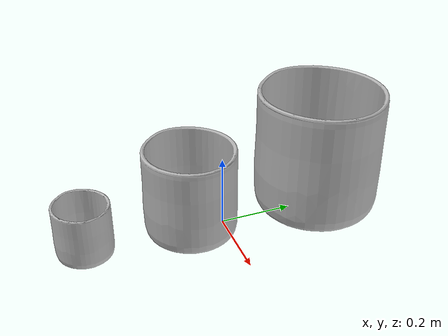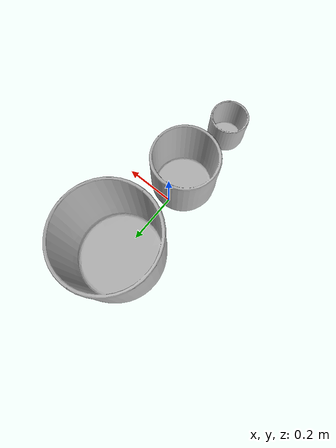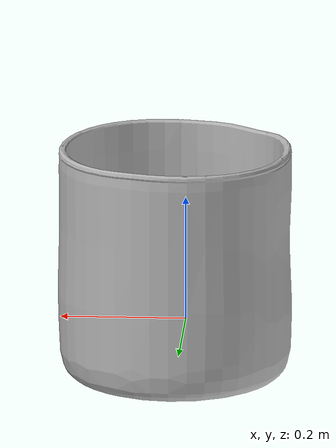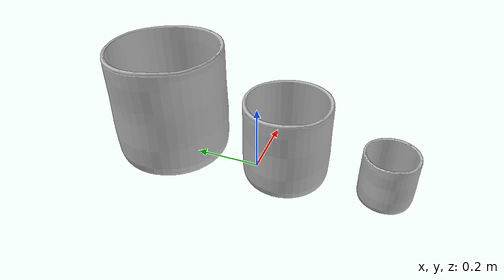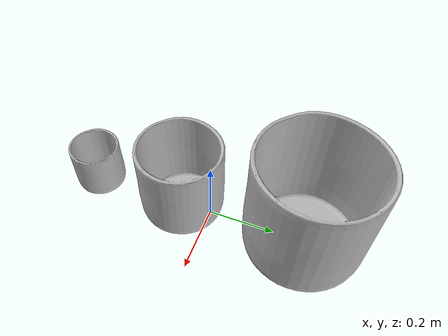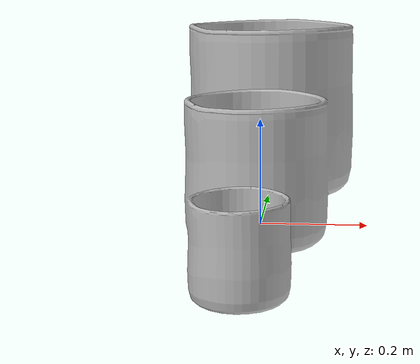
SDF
<sdf version="1.6">
	<model name="HomeStorageBasketsBinsAndContainers_O45832f40a099_lod0">
		<link name="main_link">
			<visual name="visual_RootNode">
				<geometry>
					<mesh>
						<uri>model://HomeStorageBasketsBinsAndContainers_O45832f40a099_lod0/meshes/visual_RootNode.dae</uri>
					</mesh>
				</geometry>
			</visual>
			<collision name="collision_RootNode_lod0_0">
				<geometry>
					<mesh>
						<uri>model://HomeStorageBasketsBinsAndContainers_O45832f40a099_lod0/meshes/collision_RootNode_lod0_0.dae</uri>
					</mesh>
				</geometry>
			</collision>
		</link>
	</model>
</sdf>
